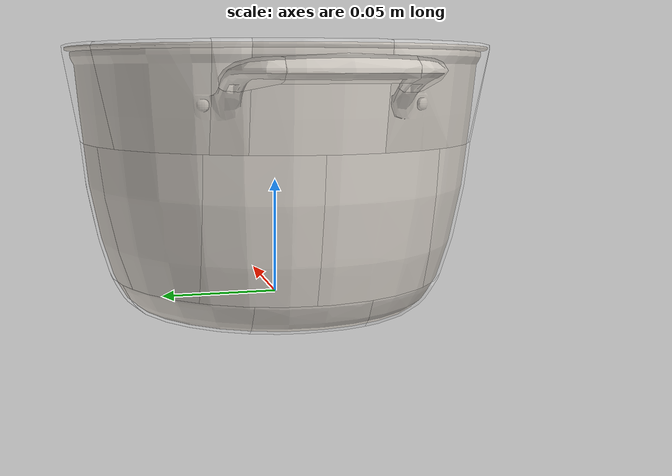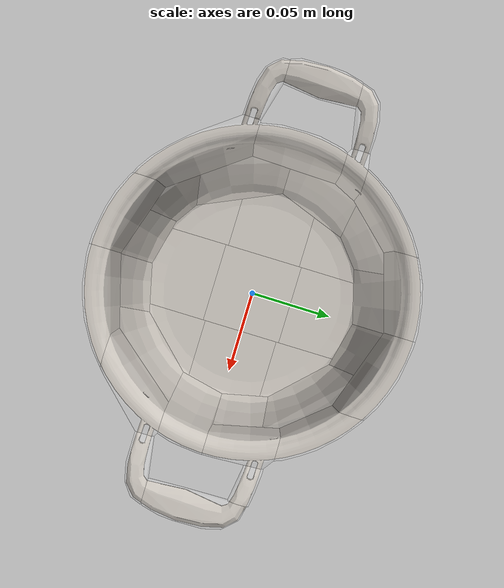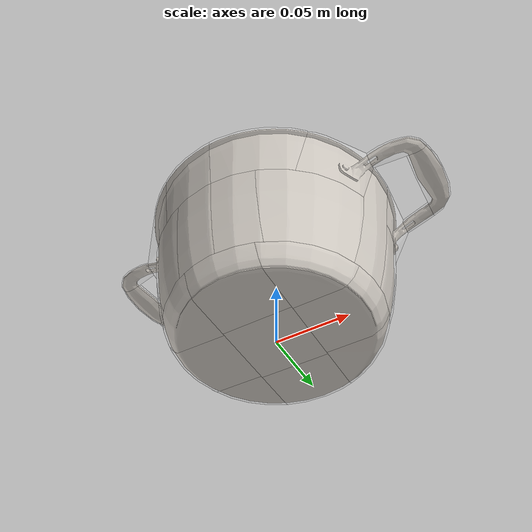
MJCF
<mujoco model="model">
  <compiler angle="radian" />
  <asset>
    <mesh file="visual/Pot054.obj" name="Pot054_vis" scale="0.65 0.65 0.65" />
    <texture file="visual/T_Pot054_BC001.png" name="Pot054_material" type="2d" />
    <material name="Pot054_material" rgba="1 1 1 1.0" texture="Pot054_material" shininess="0.4472135901451111" specular="0.3103448502657381" />
    <mesh file="collision/Pot054_collision_8_0.obj" name="Pot054_collision_8_0" scale="0.65 0.65 0.65" />
    <mesh file="collision/Pot054_collision_9_0.obj" name="Pot054_collision_9_0" scale="0.65 0.65 0.65" />
    <mesh file="collision/Pot054_collision_20_0.obj" name="Pot054_collision_20_0" scale="0.65 0.65 0.65" />
    <mesh file="collision/Pot054_collision_21_0.obj" name="Pot054_collision_21_0" scale="0.65 0.65 0.65" />
    <mesh file="collision/Pot054_collision_23_0.obj" name="Pot054_collision_23_0" scale="0.65 0.65 0.65" />
    <mesh file="collision/Pot054_collision_22_0.obj" name="Pot054_collision_22_0" scale="0.65 0.65 0.65" />
    <mesh file="collision/Pot054_collision_26_0.obj" name="Pot054_collision_26_0" scale="0.65 0.65 0.65" />
    <mesh file="collision/Pot054_collision_27_0.obj" name="Pot054_collision_27_0" scale="0.65 0.65 0.65" />
    <mesh file="collision/Pot054_collision_25_0.obj" name="Pot054_collision_25_0" scale="0.65 0.65 0.65" />
    <mesh file="collision/Pot054_collision_19_0.obj" name="Pot054_collision_19_0" scale="0.65 0.65 0.65" />
    <mesh file="collision/Pot054_collision_18_0.obj" name="Pot054_collision_18_0" scale="0.65 0.65 0.65" />
    <mesh file="collision/Pot054_collision_24_0.obj" name="Pot054_collision_24_0" scale="0.65 0.65 0.65" />
    <mesh file="collision/Pot054_collision_29_0.obj" name="Pot054_collision_29_0" scale="0.65 0.65 0.65" />
    <mesh file="collision/Pot054_collision_15_0.obj" name="Pot054_collision_15_0" scale="0.65 0.65 0.65" />
    <mesh file="collision/Pot054_collision_14_0.obj" name="Pot054_collision_14_0" scale="0.65 0.65 0.65" />
    <mesh file="collision/Pot054_collision_28_0.obj" name="Pot054_collision_28_0" scale="0.65 0.65 0.65" />
    <mesh file="collision/Pot054_collision_16_0.obj" name="Pot054_collision_16_0" scale="0.65 0.65 0.65" />
    <mesh file="collision/Pot054_collision_17_0.obj" name="Pot054_collision_17_0" scale="0.65 0.65 0.65" />
    <mesh file="collision/Pot054_collision_13_0.obj" name="Pot054_collision_13_0" scale="0.65 0.65 0.65" />
    <mesh file="collision/Pot054_collision_12_0.obj" name="Pot054_collision_12_0" scale="0.65 0.65 0.65" />
    <mesh file="collision/Pot054_collision_10_0.obj" name="Pot054_collision_10_0" scale="0.65 0.65 0.65" />
    <mesh file="collision/Pot054_collision_11_0.obj" name="Pot054_collision_11_0" scale="0.65 0.65 0.65" />
    <mesh file="collision/Pot054_collision_1_0.obj" name="Pot054_collision_1_0" scale="0.65 0.65 0.65" />
    <mesh file="collision/Pot054_collision_0_0.obj" name="Pot054_collision_0_0" scale="0.65 0.65 0.65" />
    <mesh file="collision/Pot054_collision_0_1.obj" name="Pot054_collision_0_1" scale="0.65 0.65 0.65" />
    <mesh file="collision/Pot054_collision_0_2.obj" name="Pot054_collision_0_2" scale="0.65 0.65 0.65" />
    <mesh file="collision/Pot054_collision_0_3.obj" name="Pot054_collision_0_3" scale="0.65 0.65 0.65" />
    <mesh file="collision/Pot054_collision_0_4.obj" name="Pot054_collision_0_4" scale="0.65 0.65 0.65" />
    <mesh file="collision/Pot054_collision_0_5.obj" name="Pot054_collision_0_5" scale="0.65 0.65 0.65" />
    <mesh file="collision/Pot054_collision_0_6.obj" name="Pot054_collision_0_6" scale="0.65 0.65 0.65" />
    <mesh file="collision/Pot054_collision_0_7.obj" name="Pot054_collision_0_7" scale="0.65 0.65 0.65" />
    <mesh file="collision/Pot054_collision_0_8.obj" name="Pot054_collision_0_8" scale="0.65 0.65 0.65" />
    <mesh file="collision/Pot054_collision_2_0.obj" name="Pot054_collision_2_0" scale="0.65 0.65 0.65" />
    <mesh file="collision/Pot054_collision_3_0.obj" name="Pot054_collision_3_0" scale="0.65 0.65 0.65" />
    <mesh file="collision/Pot054_collision_7_0.obj" name="Pot054_collision_7_0" scale="0.65 0.65 0.65" />
    <mesh file="collision/Pot054_collision_6_0.obj" name="Pot054_collision_6_0" scale="0.65 0.65 0.65" />
    <mesh file="collision/Pot054_collision_4_0.obj" name="Pot054_collision_4_0" scale="0.65 0.65 0.65" />
    <mesh file="collision/Pot054_collision_5_0.obj" name="Pot054_collision_5_0" scale="0.65 0.65 0.65" />
  </asset>
  <default>
    <default class="visual">
      <geom conaffinity="0" contype="0" group="1" type="mesh" density="100" />
    </default>
    <default class="collision">
      <geom group="0" rgba="1 1 1 0.25" density="100" solimp="0.95 0.98 0.001" solref="0.004 1" />
    </default>
    <default class="region">
      <geom group="1" conaffinity="0" contype="0" rgba="0 1 0 0" />
    </default>
  </default>
  <worldbody>
    <body>
      <body name="object">
        <geom mesh="Pot054_vis" type="mesh" class="visual" material="Pot054_material" />
        <geom class="collision" type="mesh" mesh="Pot054_collision_8_0" />
        <geom class="collision" type="mesh" mesh="Pot054_collision_9_0" />
        <geom class="collision" type="mesh" mesh="Pot054_collision_20_0" />
        <geom class="collision" type="mesh" mesh="Pot054_collision_21_0" />
        <geom class="collision" type="mesh" mesh="Pot054_collision_23_0" />
        <geom class="collision" type="mesh" mesh="Pot054_collision_22_0" />
        <geom class="collision" type="mesh" mesh="Pot054_collision_26_0" />
        <geom class="collision" type="mesh" mesh="Pot054_collision_27_0" />
        <geom class="collision" type="mesh" mesh="Pot054_collision_25_0" />
        <geom class="collision" type="mesh" mesh="Pot054_collision_19_0" />
        <geom class="collision" type="mesh" mesh="Pot054_collision_18_0" />
        <geom class="collision" type="mesh" mesh="Pot054_collision_24_0" />
        <geom class="collision" type="mesh" mesh="Pot054_collision_29_0" />
        <geom class="collision" type="mesh" mesh="Pot054_collision_15_0" />
        <geom class="collision" type="mesh" mesh="Pot054_collision_14_0" />
        <geom class="collision" type="mesh" mesh="Pot054_collision_28_0" />
        <geom class="collision" type="mesh" mesh="Pot054_collision_16_0" />
        <geom class="collision" type="mesh" mesh="Pot054_collision_17_0" />
        <geom class="collision" type="mesh" mesh="Pot054_collision_13_0" />
        <geom class="collision" type="mesh" mesh="Pot054_collision_12_0" />
        <geom class="collision" type="mesh" mesh="Pot054_collision_10_0" />
        <geom class="collision" type="mesh" mesh="Pot054_collision_11_0" />
        <geom class="collision" type="mesh" mesh="Pot054_collision_1_0" />
        <geom class="collision" type="mesh" mesh="Pot054_collision_0_0" />
        <geom class="collision" type="mesh" mesh="Pot054_collision_0_1" />
        <geom class="collision" type="mesh" mesh="Pot054_collision_0_2" />
        <geom class="collision" type="mesh" mesh="Pot054_collision_0_3" />
        <geom class="collision" type="mesh" mesh="Pot054_collision_0_4" />
        <geom class="collision" type="mesh" mesh="Pot054_collision_0_5" />
        <geom class="collision" type="mesh" mesh="Pot054_collision_0_6" />
        <geom class="collision" type="mesh" mesh="Pot054_collision_0_7" />
        <geom class="collision" type="mesh" mesh="Pot054_collision_0_8" />
        <geom class="collision" type="mesh" mesh="Pot054_collision_2_0" />
        <geom class="collision" type="mesh" mesh="Pot054_collision_3_0" />
        <geom class="collision" type="mesh" mesh="Pot054_collision_7_0" />
        <geom class="collision" type="mesh" mesh="Pot054_collision_6_0" />
        <geom class="collision" type="mesh" mesh="Pot054_collision_4_0" />
        <geom class="collision" type="mesh" mesh="Pot054_collision_5_0" />
        <geom class="region" name="reg_bbox" type="box" pos="-0.00001 -0.00016 0.05342" size="0.12940 0.09020 0.05487" />
        <geom class="region" name="liquid" type="cylinder" rgba="0 0 0 0" size="0.08125 0.00065" pos="0.00001 0.00000 0.07800" />
        <geom class="region" name="reg_int" type="cylinder" rgba="0 0 0 0" size="0.06370 0.04550" pos="0.00001 0.00000 0.05575" />
      </body>
    </body>
  </worldbody>
</mujoco>
